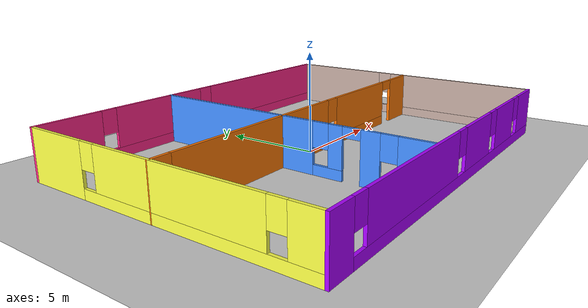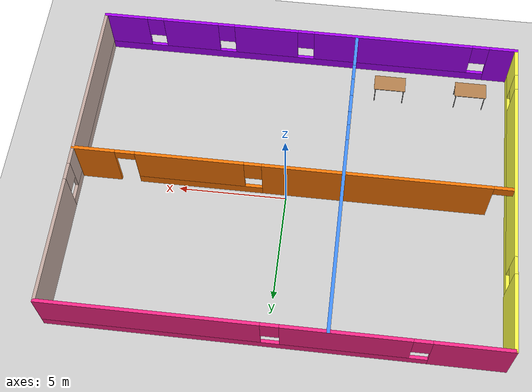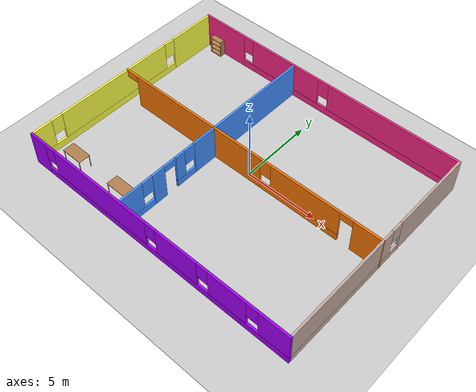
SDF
<sdf version="1.6">
 <world name="default">
  <model name="ground_plane">
   <static>1</static>
   <link name="link">
    <collision name="collision">
     <geometry><plane><normal>0 0 1</normal><size>100 100</size></plane></geometry>
     <surface><friction><ode><mu>100</mu><mu2>50</mu2></ode></friction></surface>
    </collision>
    <visual name="visual">
     <cast_shadows>0</cast_shadows>
     <geometry><plane><normal>0 0 1</normal><size>100 100</size></plane></geometry>
     <material>
      <script><uri>file://media/materials/scripts/gazebo.material</uri><name>Gazebo/Grey</name></script>
     </material>
    </visual>
   </link>
  </model>
  <model name="table">
   <static>1</static>
   <link name="link">
    <collision name="surface">
     <pose>0 0 1 0 -0 0</pose>
     <geometry><box><size>1.5 0.8 0.03</size></box></geometry>
     <surface><friction><ode><mu>0.6</mu><mu2>0.6</mu2></ode></friction></surface>
    </collision>
    <visual name="visual1">
     <pose>0 0 1 0 -0 0</pose>
     <geometry><box><size>1.5 0.8 0.03</size></box></geometry>
     <material>
      <script><uri>file://media/materials/scripts/gazebo.material</uri><name>Gazebo/Wood</name></script>
     </material>
    </visual>
    <collision name="front_left_leg">
     <pose>0.68 0.38 0.5 0 -0 0</pose>
     <geometry><cylinder><radius>0.02</radius><length>1</length></cylinder></geometry>
    </collision>
    <visual name="front_left_leg">
     <pose>0.68 0.38 0.5 0 -0 0</pose>
     <geometry><cylinder><radius>0.02</radius><length>1</length></cylinder></geometry>
     <material>
      <script><uri>file://media/materials/scripts/gazebo.material</uri><name>Gazebo/Grey</name></script>
     </material>
    </visual>
    <collision name="front_right_leg">
     <pose>0.68 -0.38 0.5 0 -0 0</pose>
     <geometry><cylinder><radius>0.02</radius><length>1</length></cylinder></geometry>
    </collision>
    <visual name="front_right_leg">
     <pose>0.68 -0.38 0.5 0 -0 0</pose>
     <geometry><cylinder><radius>0.02</radius><length>1</length></cylinder></geometry>
     <material>
      <script><uri>file://media/materials/scripts/gazebo.material</uri><name>Gazebo/Grey</name></script>
     </material>
    </visual>
    <collision name="back_right_leg">
     <pose>-0.68 -0.38 0.5 0 -0 0</pose>
     <geometry><cylinder><radius>0.02</radius><length>1</length></cylinder></geometry>
    </collision>
    <visual name="back_right_leg">
     <pose>-0.68 -0.38 0.5 0 -0 0</pose>
     <geometry><cylinder><radius>0.02</radius><length>1</length></cylinder></geometry>
     <material>
      <script><uri>file://media/materials/scripts/gazebo.material</uri><name>Gazebo/Grey</name></script>
     </material>
    </visual>
    <collision name="back_left_leg">
     <pose>-0.68 0.38 0.5 0 -0 0</pose>
     <geometry><cylinder><radius>0.02</radius><length>1</length></cylinder></geometry>
    </collision>
    <visual name="back_left_leg">
     <pose>-0.68 0.38 0.5 0 -0 0</pose>
     <geometry><cylinder><radius>0.02</radius><length>1</length></cylinder></geometry>
     <material>
      <script><uri>file://media/materials/scripts/gazebo.material</uri><name>Gazebo/Grey</name></script>
     </material>
    </visual>
   </link>
   <pose>-8.25471 -6.36352 0 0 -0 0</pose>
  </model>
  <model name="table_3">
   <static>1</static>
   <link name="link">
    <collision name="surface">
     <pose>0 0 1 0 -0 0</pose>
     <geometry><box><size>1.5 0.8 0.03</size></box></geometry>
     <surface><friction><ode><mu>0.6</mu><mu2>0.6</mu2></ode></friction></surface>
    </collision>
    <visual name="visual1">
     <pose>0 0 1 0 -0 0</pose>
     <geometry><box><size>1.5 0.8 0.03</size></box></geometry>
     <material>
      <script><uri>file://media/materials/scripts/gazebo.material</uri><name>Gazebo/Wood</name></script>
     </material>
    </visual>
    <collision name="front_left_leg">
     <pose>0.68 0.38 0.5 0 -0 0</pose>
     <geometry><cylinder><radius>0.02</radius><length>1</length></cylinder></geometry>
    </collision>
    <visual name="front_left_leg">
     <pose>0.68 0.38 0.5 0 -0 0</pose>
     <geometry><cylinder><radius>0.02</radius><length>1</length></cylinder></geometry>
     <material>
      <script><uri>file://media/materials/scripts/gazebo.material</uri><name>Gazebo/Grey</name></script>
     </material>
    </visual>
    <collision name="front_right_leg">
     <pose>0.68 -0.38 0.5 0 -0 0</pose>
     <geometry><cylinder><radius>0.02</radius><length>1</length></cylinder></geometry>
    </collision>
    <visual name="front_right_leg">
     <pose>0.68 -0.38 0.5 0 -0 0</pose>
     <geometry><cylinder><radius>0.02</radius><length>1</length></cylinder></geometry>
     <material>
      <script><uri>file://media/materials/scripts/gazebo.material</uri><name>Gazebo/Grey</name></script>
     </material>
    </visual>
    <collision name="back_right_leg">
     <pose>-0.68 -0.38 0.5 0 -0 0</pose>
     <geometry><cylinder><radius>0.02</radius><length>1</length></cylinder></geometry>
    </collision>
    <visual name="back_right_leg">
     <pose>-0.68 -0.38 0.5 0 -0 0</pose>
     <geometry><cylinder><radius>0.02</radius><length>1</length></cylinder></geometry>
     <material>
      <script><uri>file://media/materials/scripts/gazebo.material</uri><name>Gazebo/Grey</name></script>
     </material>
    </visual>
    <collision name="back_left_leg">
     <pose>-0.68 0.38 0.5 0 -0 0</pose>
     <geometry><cylinder><radius>0.02</radius><length>1</length></cylinder></geometry>
    </collision>
    <visual name="back_left_leg">
     <pose>-0.68 0.38 0.5 0 -0 0</pose>
     <geometry><cylinder><radius>0.02</radius><length>1</length></cylinder></geometry>
     <material>
      <script><uri>file://media/materials/scripts/gazebo.material</uri><name>Gazebo/Grey</name></script>
     </material>
    </visual>
   </link>
   <pose>-4.365 -6.32791 0 0 -0 0</pose>
  </model>
  <model name="bookshelf_0">
   <static>1</static>
   <link name="link">
    <inertial><mass>1</mass></inertial>
    <collision name="back">
     <pose>0 0.005 0.6 0 -0 0</pose>
     <geometry><box><size>0.9 0.01 1.2</size></box></geometry>
    </collision>
    <visual name="visual1">
     <pose>0 0.005 0.6 0 -0 0</pose>
     <geometry><box><size>0.9 0.01 1.2</size></box></geometry>
     <material>
      <script><uri>file://media/materials/scripts/gazebo.material</uri><name>Gazebo/Wood</name></script>
     </material>
    </visual>
    <collision name="left_side">
     <pose>0.45 -0.195 0.6 0 -0 0</pose>
     <geometry><box><size>0.02 0.4 1.2</size></box></geometry>
    </collision>
    <visual name="visual2">
     <pose>0.45 -0.195 0.6 0 -0 0</pose>
     <geometry><box><size>0.02 0.4 1.2</size></box></geometry>
     <material>
      <script><uri>file://media/materials/scripts/gazebo.material</uri><name>Gazebo/Wood</name></script>
     </material>
    </visual>
    <collision name="right_side">
     <pose>-0.45 -0.195 0.6 0 -0 0</pose>
     <geometry><box><size>0.02 0.4 1.2</size></box></geometry>
    </collision>
    <visual name="visual3">
     <pose>-0.45 -0.195 0.6 0 -0 0</pose>
     <geometry><box><size>0.02 0.4 1.2</size></box></geometry>
     <material>
      <script><uri>file://media/materials/scripts/gazebo.material</uri><name>Gazebo/Wood</name></script>
     </material>
    </visual>
    <collision name="bottom">
     <pose>0 -0.195 0.03 0 -0 0</pose>
     <geometry><box><size>0.88 0.4 0.06</size></box></geometry>
    </collision>
    <visual name="visual4">
     <pose>0 -0.195 0.03 0 -0 0</pose>
     <geometry><box><size>0.88 0.4 0.06</size></box></geometry>
     <material>
      <script><uri>file://media/materials/scripts/gazebo.material</uri><name>Gazebo/Wood</name></script>
     </material>
    </visual>
    <collision name="top">
     <pose>0 -0.195 1.19 0 -0 0</pose>
     <geometry><box><size>0.88 0.4 0.02</size></box></geometry>
    </collision>
    <visual name="visual5">
     <pose>0 -0.195 1.19 0 -0 0</pose>
     <geometry><box><size>0.88 0.4 0.02</size></box></geometry>
     <material>
      <script><uri>file://media/materials/scripts/gazebo.material</uri><name>Gazebo/Wood</name></script>
     </material>
    </visual>
    <collision name="low_shelf">
     <pose>0 -0.195 0.43 0 -0 0</pose>
     <geometry><box><size>0.88 0.4 0.02</size></box></geometry>
    </collision>
    <visual name="visual6">
     <pose>0 -0.195 0.43 0 -0 0</pose>
     <geometry><box><size>0.88 0.4 0.02</size></box></geometry>
     <material>
      <script><uri>file://media/materials/scripts/gazebo.material</uri><name>Gazebo/Wood</name></script>
     </material>
    </visual>
    <collision name="high_shelf">
     <pose>0 -0.195 0.8 0 -0 0</pose>
     <geometry><box><size>0.88 0.4 0.02</size></box></geometry>
    </collision>
    <visual name="visual7">
     <pose>0 -0.195 0.8 0 -0 0</pose>
     <geometry><box><size>0.88 0.4 0.02</size></box></geometry>
     <material>
      <script><uri>file://media/materials/scripts/gazebo.material</uri><name>Gazebo/Wood</name></script>
     </material>
    </visual>
   </link>
   <pose>-9.0817 7.03716 0 0 -0 0</pose>
  </model>
  <model name="my_small_office">
   <pose>-0.241792 -0.344199 0 0 -0 0</pose>
   <link name="Wall_1">
    <pose>0 -7.5 0 0 -0 0</pose>
    <visual name="Wall_1_Visual_0">
     <pose>-9.32312 0 1.25 0 -0 0</pose>
     <geometry><box><size>1.35377 0.15 2.5</size></box></geometry>
     <material>
      <script><uri>file://media/materials/scripts/gazebo.material</uri><name>Gazebo/Grey</name></script>
      <ambient>0.666667 0 1 1</ambient>
     </material>
     <meta><layer>0</layer></meta>
    </visual>
    <collision name="Wall_1_Collision_0">
     <geometry><box><size>1.35377 0.15 2.5</size></box></geometry>
     <pose>-9.32312 0 1.25 0 -0 0</pose>
    </collision>
    <visual name="Wall_1_Visual_1">
     <pose>0.676883 0 0.25 0 -0 0</pose>
     <geometry><box><size>18.6462 0.15 0.5</size></box></geometry>
     <material>
      <script><uri>file://media/materials/scripts/gazebo.material</uri><name>Gazebo/Grey</name></script>
      <ambient>0.666667 0 1 1</ambient>
     </material>
     <meta><layer>0</layer></meta>
    </visual>
    <collision name="Wall_1_Collision_1">
     <geometry><box><size>18.6462 0.15 0.5</size></box></geometry>
     <pose>0.676883 0 0.25 0 -0 0</pose>
    </collision>
    <visual name="Wall_1_Visual_2">
     <pose>-4.05234 0 1.5 0 -0 0</pose>
     <geometry><box><size>7.58779 0.15 2</size></box></geometry>
     <material>
      <script><uri>file://media/materials/scripts/gazebo.material</uri><name>Gazebo/Grey</name></script>
      <ambient>0.666667 0 1 1</ambient>
     </material>
     <meta><layer>0</layer></meta>
    </visual>
    <collision name="Wall_1_Collision_2">
     <geometry><box><size>7.58779 0.15 2</size></box></geometry>
     <pose>-4.05234 0 1.5 0 -0 0</pose>
    </collision>
    <visual name="Wall_1_Visual_3">
     <pose>2.08342 0 1.5 0 -0 0</pose>
     <geometry><box><size>3.08373 0.15 2</size></box></geometry>
     <material>
      <script><uri>file://media/materials/scripts/gazebo.material</uri><name>Gazebo/Grey</name></script>
      <ambient>0.666667 0 1 1</ambient>
     </material>
     <meta><layer>0</layer></meta>
    </visual>
    <collision name="Wall_1_Collision_3">
     <geometry><box><size>3.08373 0.15 2</size></box></geometry>
     <pose>2.08342 0 1.5 0 -0 0</pose>
    </collision>
    <visual name="Wall_1_Visual_4">
     <pose>5.76488 0 1.5 0 -0 0</pose>
     <geometry><box><size>2.67918 0.15 2</size></box></geometry>
     <material>
      <script><uri>file://media/materials/scripts/gazebo.material</uri><name>Gazebo/Grey</name></script>
      <ambient>0.666667 0 1 1</ambient>
     </material>
     <meta><layer>0</layer></meta>
    </visual>
    <collision name="Wall_1_Collision_4">
     <geometry><box><size>2.67918 0.15 2</size></box></geometry>
     <pose>5.76488 0 1.5 0 -0 0</pose>
    </collision>
    <visual name="Wall_1_Visual_5">
     <pose>8.95224 0 1.5 0 -0 0</pose>
     <geometry><box><size>2.09553 0.15 2</size></box></geometry>
     <material>
      <script><uri>file://media/materials/scripts/gazebo.material</uri><name>Gazebo/Grey</name></script>
      <ambient>0.666667 0 1 1</ambient>
     </material>
     <meta><layer>0</layer></meta>
    </visual>
    <collision name="Wall_1_Collision_5">
     <geometry><box><size>2.09553 0.15 2</size></box></geometry>
     <pose>8.95224 0 1.5 0 -0 0</pose>
    </collision>
    <visual name="Wall_1_Visual_6">
     <pose>-8.24623 0 1.9 0 -0 0</pose>
     <geometry><box><size>0.8 0.15 1.2</size></box></geometry>
     <material>
      <script><uri>file://media/materials/scripts/gazebo.material</uri><name>Gazebo/Grey</name></script>
      <ambient>0.666667 0 1 1</ambient>
     </material>
     <meta><layer>0</layer></meta>
    </visual>
    <collision name="Wall_1_Collision_6">
     <geometry><box><size>0.8 0.15 1.2</size></box></geometry>
     <pose>-8.24623 0 1.9 0 -0 0</pose>
    </collision>
    <visual name="Wall_1_Visual_7">
     <pose>0.141556 0 1.9 0 -0 0</pose>
     <geometry><box><size>0.8 0.15 1.2</size></box></geometry>
     <material>
      <script><uri>file://media/materials/scripts/gazebo.material</uri><name>Gazebo/Grey</name></script>
      <ambient>0.666667 0 1 1</ambient>
     </material>
     <meta><layer>0</layer></meta>
    </visual>
    <collision name="Wall_1_Collision_7">
     <geometry><box><size>0.8 0.15 1.2</size></box></geometry>
     <pose>0.141556 0 1.9 0 -0 0</pose>
    </collision>
    <visual name="Wall_1_Visual_8">
     <pose>4.02529 0 1.9 0 -0 0</pose>
     <geometry><box><size>0.8 0.15 1.2</size></box></geometry>
     <material>
      <script><uri>file://media/materials/scripts/gazebo.material</uri><name>Gazebo/Grey</name></script>
      <ambient>0.666667 0 1 1</ambient>
     </material>
     <meta><layer>0</layer></meta>
    </visual>
    <collision name="Wall_1_Collision_8">
     <geometry><box><size>0.8 0.15 1.2</size></box></geometry>
     <pose>4.02529 0 1.9 0 -0 0</pose>
    </collision>
    <visual name="Wall_1_Visual_9">
     <pose>7.50447 0 1.9 0 -0 0</pose>
     <geometry><box><size>0.8 0.15 1.2</size></box></geometry>
     <material>
      <script><uri>file://media/materials/scripts/gazebo.material</uri><name>Gazebo/Grey</name></script>
      <ambient>0.666667 0 1 1</ambient>
     </material>
     <meta><layer>0</layer></meta>
    </visual>
    <collision name="Wall_1_Collision_9">
     <geometry><box><size>0.8 0.15 1.2</size></box></geometry>
     <pose>7.50447 0 1.9 0 -0 0</pose>
    </collision>
   </link>
   <link name="Wall_10">
    <pose>0 0.0775 0 0 -0 0.000252</pose>
    <visual name="Wall_10_Visual_0">
     <pose>-9.92799 0 1.25 0 -0 0</pose>
     <geometry><box><size>0.144015 0.15 2.5</size></box></geometry>
     <material>
      <script><uri>file://media/materials/scripts/gazebo.material</uri><name>Gazebo/Grey</name></script>
      <ambient>0.996078 0.47451 0.0196078 1</ambient>
     </material>
     <meta><layer>0</layer></meta>
    </visual>
    <collision name="Wall_10_Collision_0">
     <geometry><box><size>0.144015 0.15 2.5</size></box></geometry>
     <pose>-9.92799 0 1.25 0 -0 0</pose>
    </collision>
    <visual name="Wall_10_Visual_1">
     <pose>-3.79811 0 1.25 0 -0 0</pose>
     <geometry><box><size>10.3158 0.15 2.5</size></box></geometry>
     <material>
      <script><uri>file://media/materials/scripts/gazebo.material</uri><name>Gazebo/Grey</name></script>
      <ambient>0.996078 0.47451 0.0196078 1</ambient>
     </material>
     <meta><layer>0</layer></meta>
    </visual>
    <collision name="Wall_10_Collision_1">
     <geometry><box><size>10.3158 0.15 2.5</size></box></geometry>
     <pose>-3.79811 0 1.25 0 -0 0</pose>
    </collision>
    <visual name="Wall_10_Visual_2">
     <pose>9.00419 0 1.25 0 -0 0</pose>
     <geometry><box><size>1.99163 0.15 2.5</size></box></geometry>
     <material>
      <script><uri>file://media/materials/scripts/gazebo.material</uri><name>Gazebo/Grey</name></script>
      <ambient>0.996078 0.47451 0.0196078 1</ambient>
     </material>
     <meta><layer>0</layer></meta>
    </visual>
    <collision name="Wall_10_Collision_2">
     <geometry><box><size>1.99163 0.15 2.5</size></box></geometry>
     <pose>9.00419 0 1.25 0 -0 0</pose>
    </collision>
    <visual name="Wall_10_Visual_3">
     <pose>4.23407 0 0.25 0 -0 0</pose>
     <geometry><box><size>5.74861 0.15 0.5</size></box></geometry>
     <material>
      <script><uri>file://media/materials/scripts/gazebo.material</uri><name>Gazebo/Grey</name></script>
      <ambient>0.996078 0.47451 0.0196078 1</ambient>
     </material>
     <meta><layer>0</layer></meta>
    </visual>
    <collision name="Wall_10_Collision_3">
     <geometry><box><size>5.74861 0.15 0.5</size></box></geometry>
     <pose>4.23407 0 0.25 0 -0 0</pose>
    </collision>
    <visual name="Wall_10_Visual_4">
     <pose>4.63407 0 1.5 0 -0 0</pose>
     <geometry><box><size>4.94861 0.15 2</size></box></geometry>
     <material>
      <script><uri>file://media/materials/scripts/gazebo.material</uri><name>Gazebo/Grey</name></script>
      <ambient>0.996078 0.47451 0.0196078 1</ambient>
     </material>
     <meta><layer>0</layer></meta>
    </visual>
    <collision name="Wall_10_Collision_4">
     <geometry><box><size>4.94861 0.15 2</size></box></geometry>
     <pose>4.63407 0 1.5 0 -0 0</pose>
    </collision>
    <visual name="Wall_10_Visual_5">
     <pose>1.75977 0 1.9 0 -0 0</pose>
     <geometry><box><size>0.8 0.15 1.2</size></box></geometry>
     <material>
      <script><uri>file://media/materials/scripts/gazebo.material</uri><name>Gazebo/Grey</name></script>
      <ambient>0.996078 0.47451 0.0196078 1</ambient>
     </material>
     <meta><layer>0</layer></meta>
    </visual>
    <collision name="Wall_10_Collision_5">
     <geometry><box><size>0.8 0.15 1.2</size></box></geometry>
     <pose>1.75977 0 1.9 0 -0 0</pose>
    </collision>
    <visual name="Wall_10_Visual_6">
     <pose>-9.40598 0 2.25 0 -0 0</pose>
     <geometry><box><size>0.9 0.15 0.5</size></box></geometry>
     <material>
      <script><uri>file://media/materials/scripts/gazebo.material</uri><name>Gazebo/Grey</name></script>
      <ambient>0.996078 0.47451 0.0196078 1</ambient>
     </material>
     <meta><layer>0</layer></meta>
    </visual>
    <collision name="Wall_10_Collision_6">
     <geometry><box><size>0.9 0.15 0.5</size></box></geometry>
     <pose>-9.40598 0 2.25 0 -0 0</pose>
    </collision>
    <visual name="Wall_10_Visual_7">
     <pose>7.55837 0 2.25 0 -0 0</pose>
     <geometry><box><size>0.9 0.15 0.5</size></box></geometry>
     <material>
      <script><uri>file://media/materials/scripts/gazebo.material</uri><name>Gazebo/Grey</name></script>
      <ambient>0.996078 0.47451 0.0196078 1</ambient>
     </material>
     <meta><layer>0</layer></meta>
    </visual>
    <collision name="Wall_10_Collision_7">
     <geometry><box><size>0.9 0.15 0.5</size></box></geometry>
     <pose>7.55837 0 2.25 0 -0 0</pose>
    </collision>
   </link>
   <link name="Wall_12">
    <pose>-2.325 0.075 0 0 0 -1.5708</pose>
    <visual name="Wall_12_Visual_0">
     <pose>-2.8759 0 1.25 0 -0 0</pose>
     <geometry><box><size>9.24819 0.15 2.5</size></box></geometry>
     <material>
      <script><uri>file://media/materials/scripts/gazebo.material</uri><name>Gazebo/Grey</name></script>
      <ambient>0.258824 0.556863 1 1</ambient>
     </material>
     <meta><layer>0</layer></meta>
    </visual>
    <collision name="Wall_12_Collision_0">
     <geometry><box><size>9.24819 0.15 2.5</size></box></geometry>
     <pose>-2.8759 0 1.25 0 -0 0</pose>
    </collision>
    <visual name="Wall_12_Visual_1">
     <pose>4.6275 0 1.25 0 -0 0</pose>
     <geometry><box><size>0.930046 0.15 2.5</size></box></geometry>
     <material>
      <script><uri>file://media/materials/scripts/gazebo.material</uri><name>Gazebo/Grey</name></script>
      <ambient>0.258824 0.556863 1 1</ambient>
     </material>
     <meta><layer>0</layer></meta>
    </visual>
    <collision name="Wall_12_Collision_1">
     <geometry><box><size>0.930046 0.15 2.5</size></box></geometry>
     <pose>4.6275 0 1.25 0 -0 0</pose>
    </collision>
    <visual name="Wall_12_Visual_2">
     <pose>2.50534 0 0.25 0 -0 0</pose>
     <geometry><box><size>1.51428 0.15 0.5</size></box></geometry>
     <material>
      <script><uri>file://media/materials/scripts/gazebo.material</uri><name>Gazebo/Grey</name></script>
      <ambient>0.258824 0.556863 1 1</ambient>
     </material>
     <meta><layer>0</layer></meta>
    </visual>
    <collision name="Wall_12_Collision_2">
     <geometry><box><size>1.51428 0.15 0.5</size></box></geometry>
     <pose>2.50534 0 0.25 0 -0 0</pose>
    </collision>
    <visual name="Wall_12_Visual_3">
     <pose>6.29626 0 0.25 0 -0 0</pose>
     <geometry><box><size>2.40748 0.15 0.5</size></box></geometry>
     <material>
      <script><uri>file://media/materials/scripts/gazebo.material</uri><name>Gazebo/Grey</name></script>
      <ambient>0.258824 0.556863 1 1</ambient>
     </material>
     <meta><layer>0</layer></meta>
    </visual>
    <collision name="Wall_12_Collision_3">
     <geometry><box><size>2.40748 0.15 0.5</size></box></geometry>
     <pose>6.29626 0 0.25 0 -0 0</pose>
    </collision>
    <visual name="Wall_12_Visual_4">
     <pose>2.90534 0 1.5 0 -0 0</pose>
     <geometry><box><size>0.714282 0.15 2</size></box></geometry>
     <material>
      <script><uri>file://media/materials/scripts/gazebo.material</uri><name>Gazebo/Grey</name></script>
      <ambient>0.258824 0.556863 1 1</ambient>
     </material>
     <meta><layer>0</layer></meta>
    </visual>
    <collision name="Wall_12_Collision_4">
     <geometry><box><size>0.714282 0.15 2</size></box></geometry>
     <pose>2.90534 0 1.5 0 -0 0</pose>
    </collision>
    <visual name="Wall_12_Visual_5">
     <pose>2.90534 0 1.5 0 -0 0</pose>
     <geometry><box><size>0.714282 0.15 2</size></box></geometry>
     <material>
      <script><uri>file://media/materials/scripts/gazebo.material</uri><name>Gazebo/Grey</name></script>
      <ambient>0.258824 0.556863 1 1</ambient>
     </material>
     <meta><layer>0</layer></meta>
    </visual>
    <collision name="Wall_12_Collision_5">
     <geometry><box><size>0.714282 0.15 2</size></box></geometry>
     <pose>2.90534 0 1.5 0 -0 0</pose>
    </collision>
    <visual name="Wall_12_Visual_6">
     <pose>6.69626 0 1.5 0 -0 0</pose>
     <geometry><box><size>1.60748 0.15 2</size></box></geometry>
     <material>
      <script><uri>file://media/materials/scripts/gazebo.material</uri><name>Gazebo/Grey</name></script>
      <ambient>0.258824 0.556863 1 1</ambient>
     </material>
     <meta><layer>0</layer></meta>
    </visual>
    <collision name="Wall_12_Collision_6">
     <geometry><box><size>1.60748 0.15 2</size></box></geometry>
     <pose>6.69626 0 1.5 0 -0 0</pose>
    </collision>
    <visual name="Wall_12_Visual_7">
     <pose>2.14819 0 1.9 0 -0 0</pose>
     <geometry><box><size>0.8 0.15 1.2</size></box></geometry>
     <material>
      <script><uri>file://media/materials/scripts/gazebo.material</uri><name>Gazebo/Grey</name></script>
      <ambient>0.258824 0.556863 1 1</ambient>
     </material>
     <meta><layer>0</layer></meta>
    </visual>
    <collision name="Wall_12_Collision_7">
     <geometry><box><size>0.8 0.15 1.2</size></box></geometry>
     <pose>2.14819 0 1.9 0 -0 0</pose>
    </collision>
    <visual name="Wall_12_Visual_8">
     <pose>5.49252 0 1.9 0 -0 0</pose>
     <geometry><box><size>0.8 0.15 1.2</size></box></geometry>
     <material>
      <script><uri>file://media/materials/scripts/gazebo.material</uri><name>Gazebo/Grey</name></script>
      <ambient>0.258824 0.556863 1 1</ambient>
     </material>
     <meta><layer>0</layer></meta>
    </visual>
    <collision name="Wall_12_Collision_8">
     <geometry><box><size>0.8 0.15 1.2</size></box></geometry>
     <pose>5.49252 0 1.9 0 -0 0</pose>
    </collision>
    <visual name="Wall_12_Visual_9">
     <pose>3.71248 0 2.25 0 -0 0</pose>
     <geometry><box><size>0.9 0.15 0.5</size></box></geometry>
     <material>
      <script><uri>file://media/materials/scripts/gazebo.material</uri><name>Gazebo/Grey</name></script>
      <ambient>0.258824 0.556863 1 1</ambient>
     </material>
     <meta><layer>0</layer></meta>
    </visual>
    <collision name="Wall_12_Collision_9">
     <geometry><box><size>0.9 0.15 0.5</size></box></geometry>
     <pose>3.71248 0 2.25 0 -0 0</pose>
    </collision>
    <visual name="Wall_12_Visual_10">
     <pose>3.71248 0 2.25 0 -0 0</pose>
     <geometry><box><size>0.9 0.15 0.5</size></box></geometry>
     <material>
      <script><uri>file://media/materials/scripts/gazebo.material</uri><name>Gazebo/Grey</name></script>
      <ambient>0.258824 0.556863 1 1</ambient>
     </material>
     <meta><layer>0</layer></meta>
    </visual>
    <collision name="Wall_12_Collision_10">
     <geometry><box><size>0.9 0.15 0.5</size></box></geometry>
     <pose>3.71248 0 2.25 0 -0 0</pose>
    </collision>
   </link>
   <link name="Wall_3">
    <pose>0 7.5 0 0 -0 0</pose>
    <visual name="Wall_3_Visual_0">
     <pose>-8.29911 0 1.25 0 -0 0</pose>
     <geometry><box><size>3.40179 0.15 2.5</size></box></geometry>
     <material>
      <script><uri>file://media/materials/scripts/gazebo.material</uri><name>Gazebo/Grey</name></script>
      <ambient>1 0.152941 0.533333 1</ambient>
     </material>
     <meta><layer>0</layer></meta>
    </visual>
    <collision name="Wall_3_Collision_0">
     <geometry><box><size>3.40179 0.15 2.5</size></box></geometry>
     <pose>-8.29911 0 1.25 0 -0 0</pose>
    </collision>
    <visual name="Wall_3_Visual_1">
     <pose>1.7009 0 0.25 0 -0 0</pose>
     <geometry><box><size>16.5982 0.15 0.5</size></box></geometry>
     <material>
      <script><uri>file://media/materials/scripts/gazebo.material</uri><name>Gazebo/Grey</name></script>
      <ambient>1 0.152941 0.533333 1</ambient>
     </material>
     <meta><layer>0</layer></meta>
    </visual>
    <collision name="Wall_3_Collision_1">
     <geometry><box><size>16.5982 0.15 0.5</size></box></geometry>
     <pose>1.7009 0 0.25 0 -0 0</pose>
    </collision>
    <visual name="Wall_3_Visual_2">
     <pose>-3.0473 0 1.5 0 -0 0</pose>
     <geometry><box><size>5.50182 0.15 2</size></box></geometry>
     <material>
      <script><uri>file://media/materials/scripts/gazebo.material</uri><name>Gazebo/Grey</name></script>
      <ambient>1 0.152941 0.533333 1</ambient>
     </material>
     <meta><layer>0</layer></meta>
    </visual>
    <collision name="Wall_3_Collision_2">
     <geometry><box><size>5.50182 0.15 2</size></box></geometry>
     <pose>-3.0473 0 1.5 0 -0 0</pose>
    </collision>
    <visual name="Wall_3_Visual_3">
     <pose>5.25181 0 1.5 0 -0 0</pose>
     <geometry><box><size>9.49639 0.15 2</size></box></geometry>
     <material>
      <script><uri>file://media/materials/scripts/gazebo.material</uri><name>Gazebo/Grey</name></script>
      <ambient>1 0.152941 0.533333 1</ambient>
     </material>
     <meta><layer>0</layer></meta>
    </visual>
    <collision name="Wall_3_Collision_3">
     <geometry><box><size>9.49639 0.15 2</size></box></geometry>
     <pose>5.25181 0 1.5 0 -0 0</pose>
    </collision>
    <visual name="Wall_3_Visual_4">
     <pose>-6.19821 0 1.9 0 -0 0</pose>
     <geometry><box><size>0.8 0.15 1.2</size></box></geometry>
     <material>
      <script><uri>file://media/materials/scripts/gazebo.material</uri><name>Gazebo/Grey</name></script>
      <ambient>1 0.152941 0.533333 1</ambient>
     </material>
     <meta><layer>0</layer></meta>
    </visual>
    <collision name="Wall_3_Collision_4">
     <geometry><box><size>0.8 0.15 1.2</size></box></geometry>
     <pose>-6.19821 0 1.9 0 -0 0</pose>
    </collision>
    <visual name="Wall_3_Visual_5">
     <pose>0.103612 0 1.9 0 -0 0</pose>
     <geometry><box><size>0.8 0.15 1.2</size></box></geometry>
     <material>
      <script><uri>file://media/materials/scripts/gazebo.material</uri><name>Gazebo/Grey</name></script>
      <ambient>1 0.152941 0.533333 1</ambient>
     </material>
     <meta><layer>0</layer></meta>
    </visual>
    <collision name="Wall_3_Collision_5">
     <geometry><box><size>0.8 0.15 1.2</size></box></geometry>
     <pose>0.103612 0 1.9 0 -0 0</pose>
    </collision>
   </link>
   <link name="Wall_6">
    <pose>-9.925 0.075 0 0 0 -1.5708</pose>
    <visual name="Wall_6_Visual_0">
     <pose>-5.76173 0 1.25 0 -0 0</pose>
     <geometry><box><size>3.47653 0.15 2.5</size></box></geometry>
     <material>
      <script><uri>file://media/materials/scripts/gazebo.material</uri><name>Gazebo/Grey</name></script>
      <ambient>0.988235 1 0.27451 1</ambient>
     </material>
     <meta><layer>0</layer></meta>
    </visual>
    <collision name="Wall_6_Collision_0">
     <geometry><box><size>3.47653 0.15 2.5</size></box></geometry>
     <pose>-5.76173 0 1.25 0 -0 0</pose>
    </collision>
    <visual name="Wall_6_Visual_1">
     <pose>1.73827 0 0.25 0 -0 0</pose>
     <geometry><box><size>11.5235 0.15 0.5</size></box></geometry>
     <material>
      <script><uri>file://media/materials/scripts/gazebo.material</uri><name>Gazebo/Grey</name></script>
      <ambient>0.988235 1 0.27451 1</ambient>
     </material>
     <meta><layer>0</layer></meta>
    </visual>
    <collision name="Wall_6_Collision_1">
     <geometry><box><size>11.5235 0.15 0.5</size></box></geometry>
     <pose>1.73827 0 0.25 0 -0 0</pose>
    </collision>
    <visual name="Wall_6_Visual_2">
     <pose>1.06938 0 1.5 0 -0 0</pose>
     <geometry><box><size>8.58569 0.15 2</size></box></geometry>
     <material>
      <script><uri>file://media/materials/scripts/gazebo.material</uri><name>Gazebo/Grey</name></script>
      <ambient>0.988235 1 0.27451 1</ambient>
     </material>
     <meta><layer>0</layer></meta>
    </visual>
    <collision name="Wall_6_Collision_2">
     <geometry><box><size>8.58569 0.15 2</size></box></geometry>
     <pose>1.06938 0 1.5 0 -0 0</pose>
    </collision>
    <visual name="Wall_6_Visual_3">
     <pose>6.83111 0 1.5 0 -0 0</pose>
     <geometry><box><size>1.33777 0.15 2</size></box></geometry>
     <material>
      <script><uri>file://media/materials/scripts/gazebo.material</uri><name>Gazebo/Grey</name></script>
      <ambient>0.988235 1 0.27451 1</ambient>
     </material>
     <meta><layer>0</layer></meta>
    </visual>
    <collision name="Wall_6_Collision_3">
     <geometry><box><size>1.33777 0.15 2</size></box></geometry>
     <pose>6.83111 0 1.5 0 -0 0</pose>
    </collision>
    <visual name="Wall_6_Visual_4">
     <pose>-3.62347 0 1.9 0 -0 0</pose>
     <geometry><box><size>0.8 0.15 1.2</size></box></geometry>
     <material>
      <script><uri>file://media/materials/scripts/gazebo.material</uri><name>Gazebo/Grey</name></script>
      <ambient>0.988235 1 0.27451 1</ambient>
     </material>
     <meta><layer>0</layer></meta>
    </visual>
    <collision name="Wall_6_Collision_4">
     <geometry><box><size>0.8 0.15 1.2</size></box></geometry>
     <pose>-3.62347 0 1.9 0 -0 0</pose>
    </collision>
    <visual name="Wall_6_Visual_5">
     <pose>5.76222 0 1.9 0 -0 0</pose>
     <geometry><box><size>0.8 0.15 1.2</size></box></geometry>
     <material>
      <script><uri>file://media/materials/scripts/gazebo.material</uri><name>Gazebo/Grey</name></script>
      <ambient>0.988235 1 0.27451 1</ambient>
     </material>
     <meta><layer>0</layer></meta>
    </visual>
    <collision name="Wall_6_Collision_5">
     <geometry><box><size>0.8 0.15 1.2</size></box></geometry>
     <pose>5.76222 0 1.9 0 -0 0</pose>
    </collision>
   </link>
   <link name="Wall_8">
    <pose>9.925 0.075 0 0 0 -1.5708</pose>
    <visual name="Wall_8_Visual_0">
     <pose>-4.58063 0 1.25 0 -0 0</pose>
     <geometry><box><size>5.83873 0.15 2.5</size></box></geometry>
     <material>
      <script><uri>file://media/materials/scripts/gazebo.material</uri><name>Gazebo/Grey</name></script>
      <ambient>0.760784 0.662745 0.627451 1</ambient>
     </material>
     <meta><layer>0</layer></meta>
    </visual>
    <collision name="Wall_8_Collision_0">
     <geometry><box><size>5.83873 0.15 2.5</size></box></geometry>
     <pose>-4.58063 0 1.25 0 -0 0</pose>
    </collision>
    <visual name="Wall_8_Visual_1">
     <pose>2.91937 0 0.25 0 -0 0</pose>
     <geometry><box><size>9.16127 0.15 0.5</size></box></geometry>
     <material>
      <script><uri>file://media/materials/scripts/gazebo.material</uri><name>Gazebo/Grey</name></script>
      <ambient>0.760784 0.662745 0.627451 1</ambient>
     </material>
     <meta><layer>0</layer></meta>
    </visual>
    <collision name="Wall_8_Collision_1">
     <geometry><box><size>9.16127 0.15 0.5</size></box></geometry>
     <pose>2.91937 0 0.25 0 -0 0</pose>
    </collision>
    <visual name="Wall_8_Visual_2">
     <pose>3.31937 0 1.5 0 -0 0</pose>
     <geometry><box><size>8.36127 0.15 2</size></box></geometry>
     <material>
      <script><uri>file://media/materials/scripts/gazebo.material</uri><name>Gazebo/Grey</name></script>
      <ambient>0.760784 0.662745 0.627451 1</ambient>
     </material>
     <meta><layer>0</layer></meta>
    </visual>
    <collision name="Wall_8_Collision_2">
     <geometry><box><size>8.36127 0.15 2</size></box></geometry>
     <pose>3.31937 0 1.5 0 -0 0</pose>
    </collision>
    <visual name="Wall_8_Visual_3">
     <pose>-1.26127 0 1.9 0 -0 0</pose>
     <geometry><box><size>0.8 0.15 1.2</size></box></geometry>
     <material>
      <script><uri>file://media/materials/scripts/gazebo.material</uri><name>Gazebo/Grey</name></script>
      <ambient>0.760784 0.662745 0.627451 1</ambient>
     </material>
     <meta><layer>0</layer></meta>
    </visual>
    <collision name="Wall_8_Collision_3">
     <geometry><box><size>0.8 0.15 1.2</size></box></geometry>
     <pose>-1.26127 0 1.9 0 -0 0</pose>
    </collision>
   </link>
   <static>1</static>
  </model>
 </world>
</sdf>
